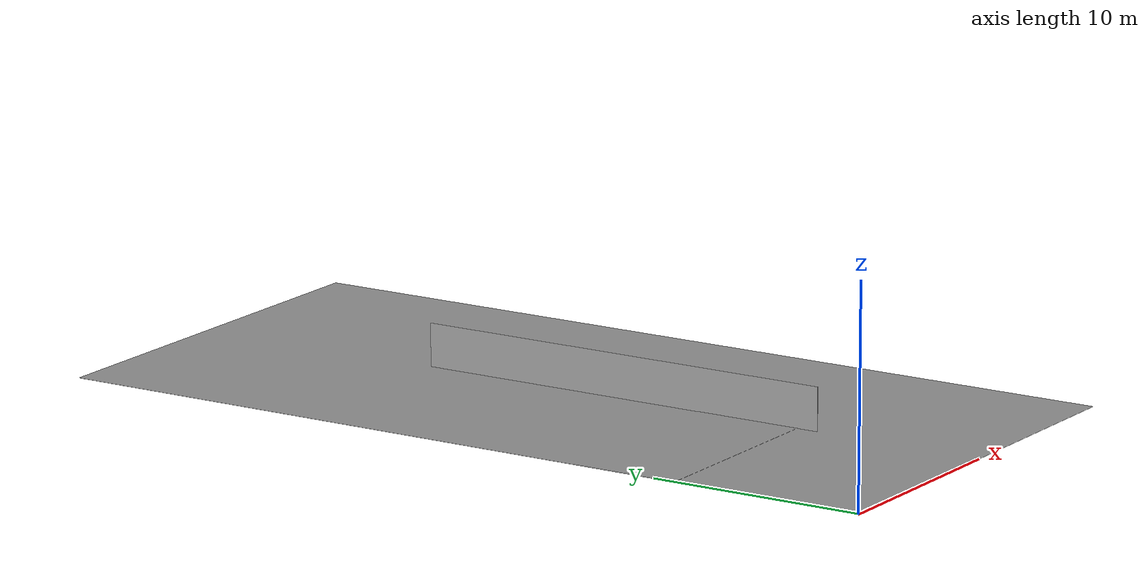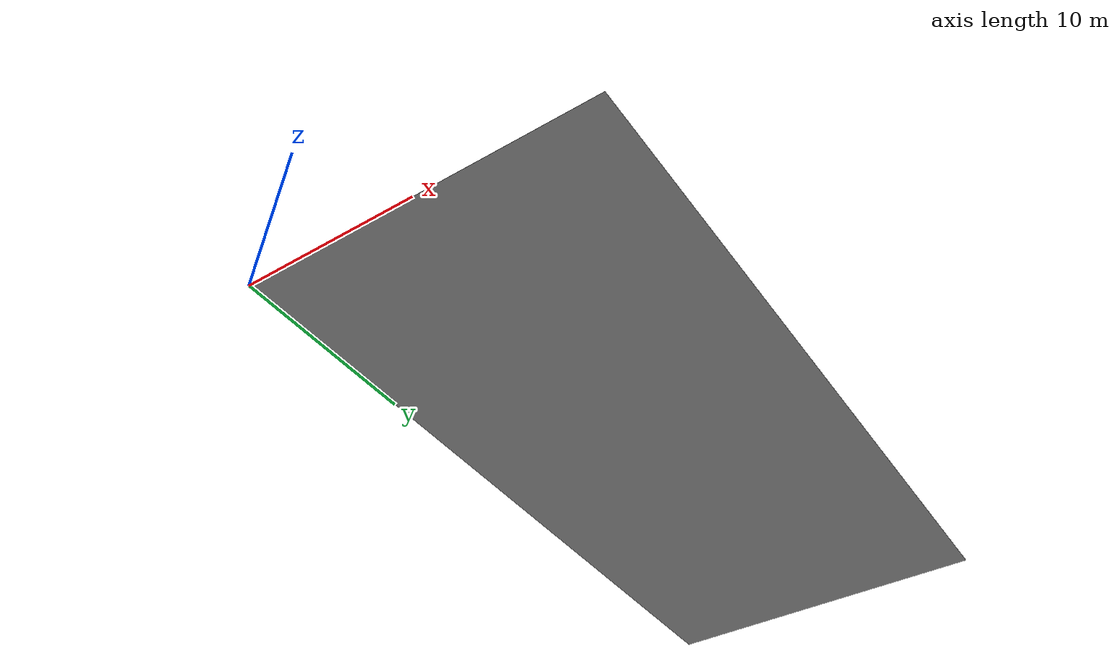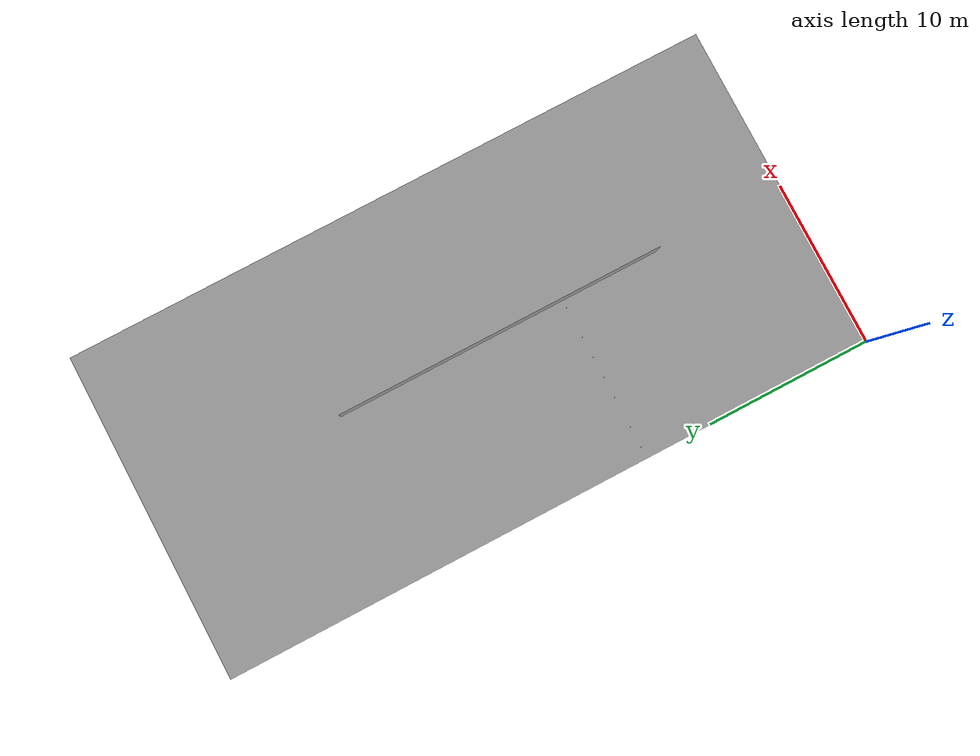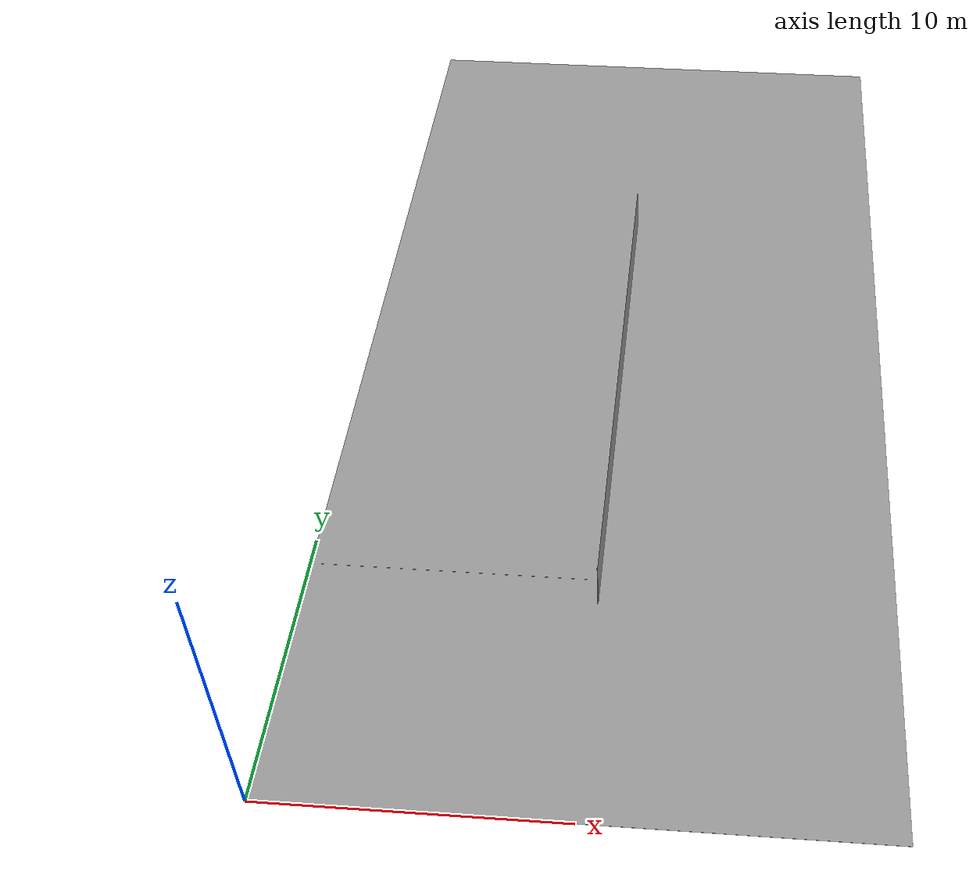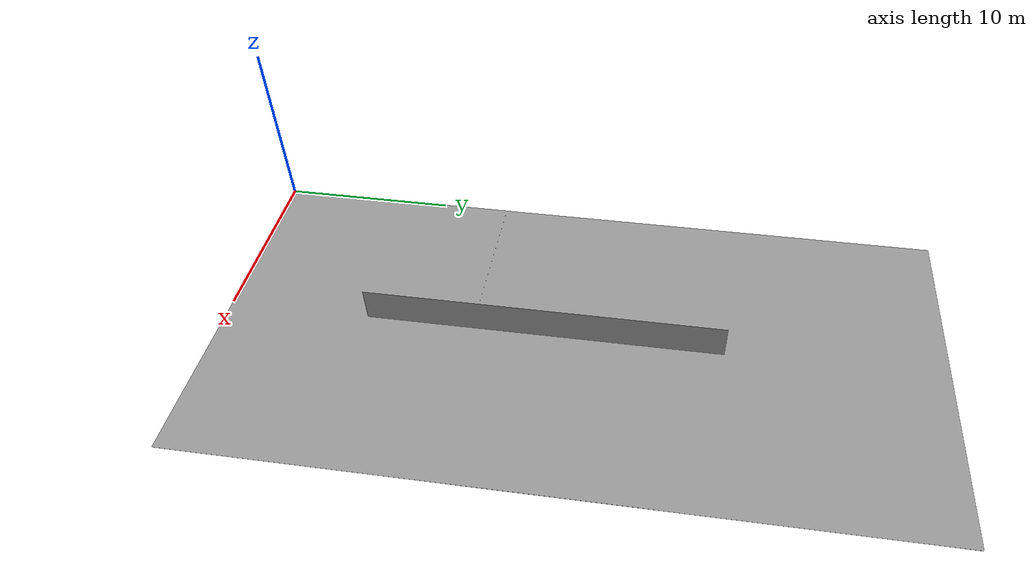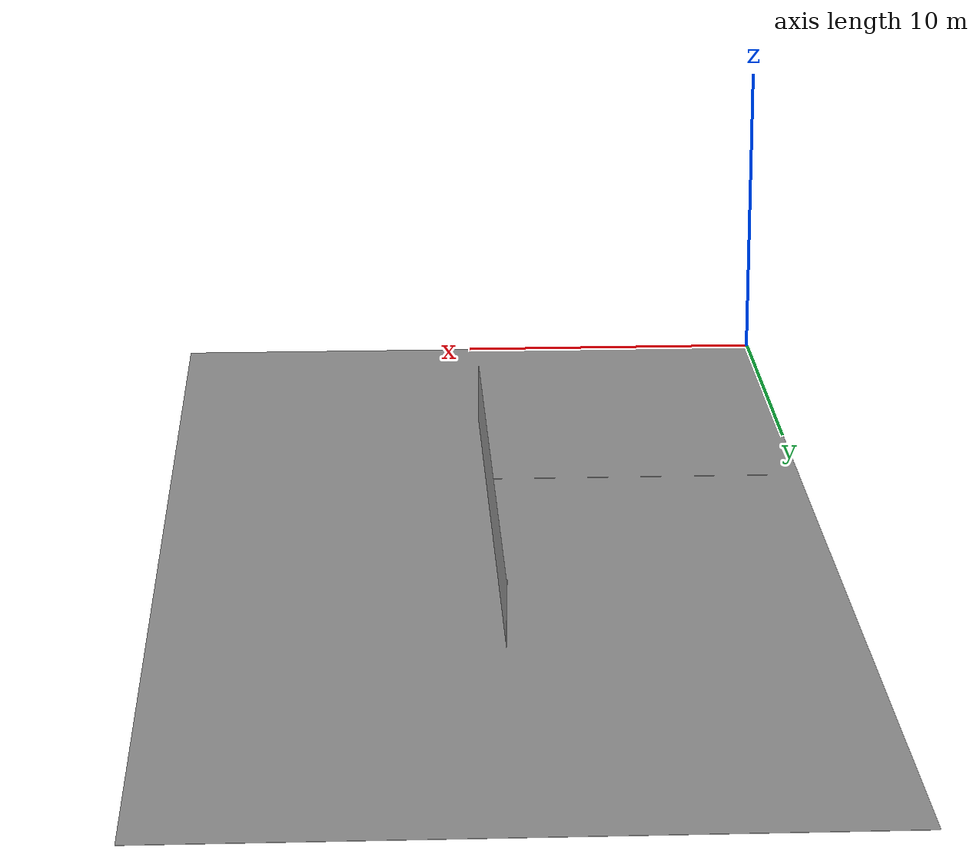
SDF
<?xml version="1.0" ?>
<sdf version="1.9">
  <model name="arena_d2">
  <static>true</static>
    <link name="link">
      <inertial>
        <mass>5.0</mass>
        <inertia>
          <ixx>9.108e-05</ixx>
          <ixy>0</ixy>
          <ixz>0</ixz>
          <iyy>2.51e-06</iyy>
          <iyz>0</iyz>
          <izz>8.931e-05</izz>
        </inertia>
      </inertial>
      <visual name="visual">
        <pose>0 0 0 0 0 0</pose>
        <geometry>
          <mesh>
            <uri>model://arena_d2/meshes/arena_d2.stl</uri>
          </mesh>
        </geometry>
        <material>
            <ambient>0.4 0.4 0.4 1</ambient>
            <diffuse>0.6 0.6 0.6 1</diffuse>
            <specular>0.5 0.5 0.5 1</specular>
        </material>
      </visual>

      <collision name="collision">
        <geometry>
          <mesh>
            <uri>model://arena_d2/meshes/arena_d2.stl</uri>
          </mesh>
        </geometry>
      </collision>
    </link>
  </model>
</sdf>
